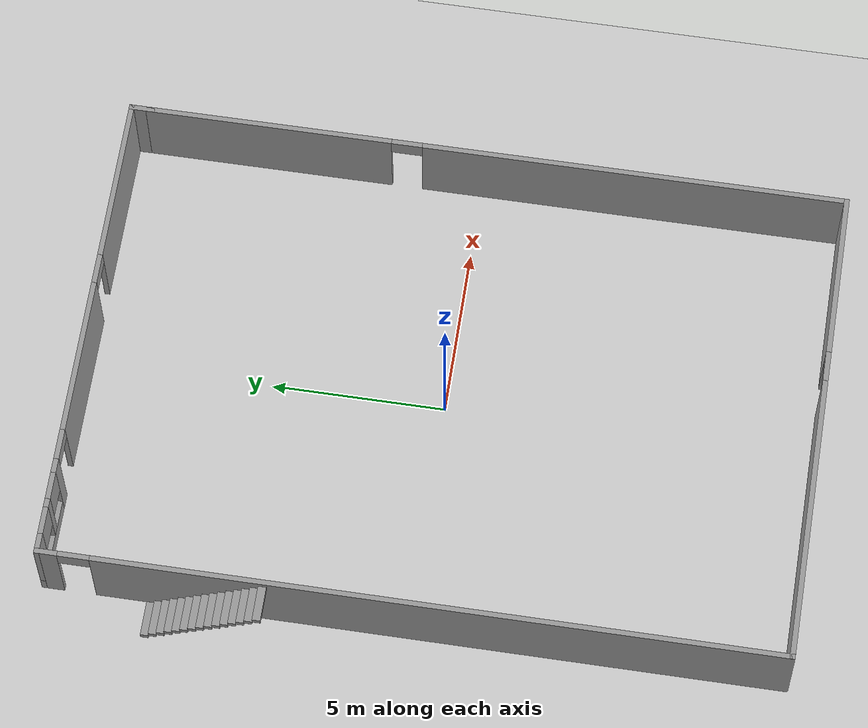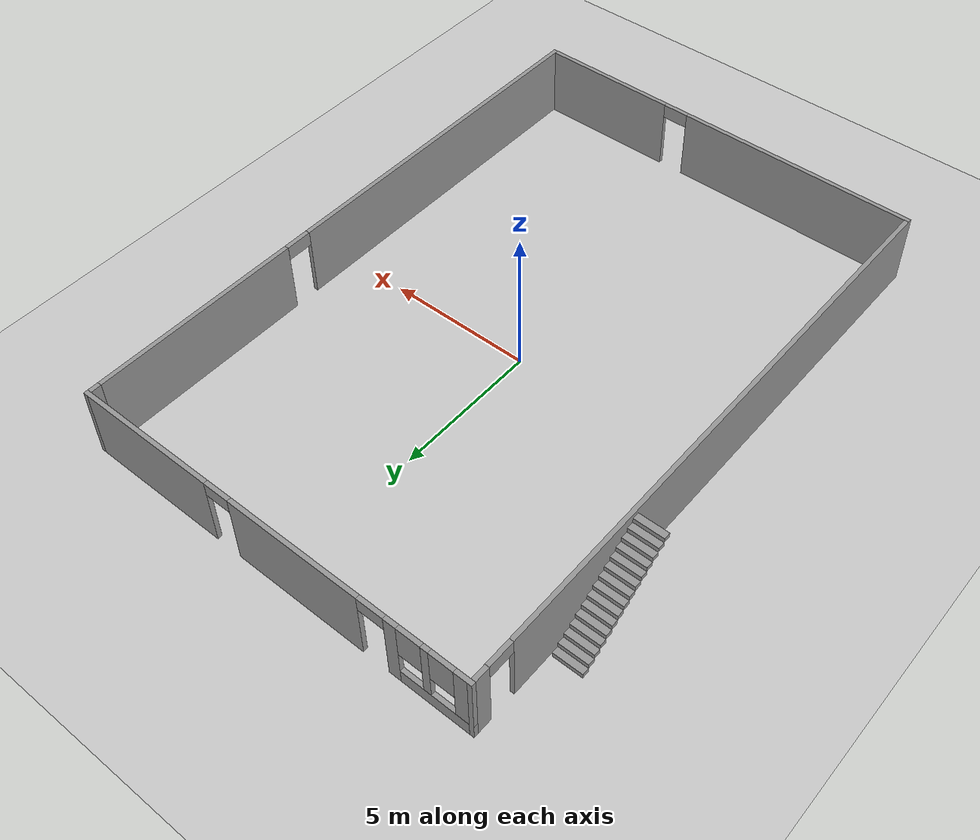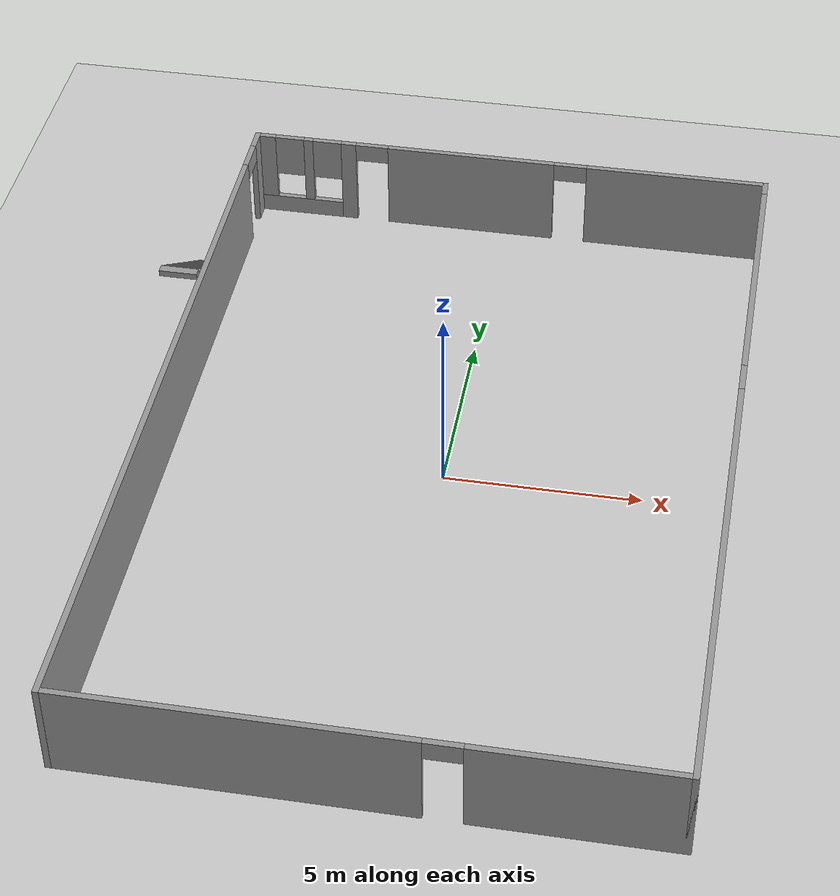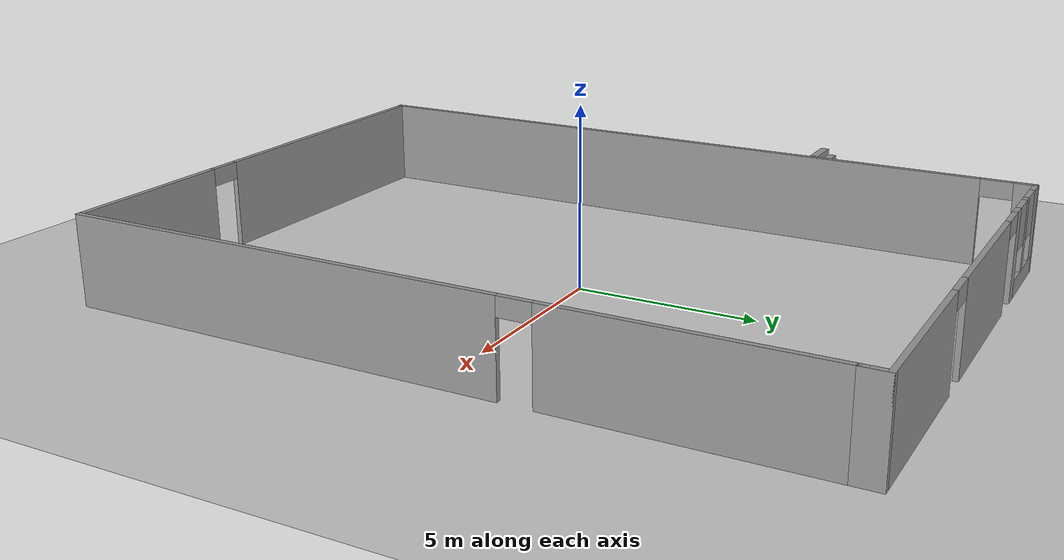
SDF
<sdf version="1.9">
 <world name="industrial-warehouse">
  <plugin filename="ignition-gazebo-contact-system" name="gz::sim::systems::Contact"/>
  <plugin filename="ignition-gazebo-imu-system" name="gz::sim::systems::Imu"/>
  <plugin filename="ignition-gazebo-physics-system" name="gz::sim::systems::Physics"/>
  <plugin filename="ignition-gazebo-scene-broadcaster-system" name="gz::sim::systems::SceneBroadcaster"/>
  <plugin filename="ignition-gazebo-sensors-system" name="gz::sim::systems::Sensors"/>
  <plugin filename="ignition-gazebo-user-commands-system" name="gz::sim::systems::UserCommands"/>
  <gravity>0 0 -9.8</gravity>
  <physics default="0" name="default_physics" type="ode">
   <max_step_size>0.01</max_step_size>
   <real_time_factor>1</real_time_factor>
   <real_time_update_rate>100</real_time_update_rate>
  </physics>
  <model name="ground_plane">
   <static>true</static>
   <link name="link">
    <collision name="collision">
     <geometry><plane><normal>0 0 1</normal><size>100 100</size></plane></geometry>
    </collision>
    <visual name="visual">
     <geometry><plane><normal>0 0 1</normal><size>100 100</size></plane></geometry>
     <material>
      <ambient>0.8 0.8 0.8 1</ambient>
      <diffuse>0.8 0.8 0.8 1</diffuse>
      <specular>0.8 0.8 0.8 1</specular>
     </material>
    </visual>
   </link>
  </model>
  <light name="Warehouse_CeilingLight_003" type="point">
   <pose>0 0 8.5 0 0 0</pose>
   <diffuse>0.5 0.5 0.5 1</diffuse>
   <specular>0.2 0.2 0.2 1</specular>
   <attenuation>
    <range>80</range>
    <constant>0.3</constant>
    <linear>0.01</linear>
    <quadratic>0.001</quadratic>
   </attenuation>
   <direction>0.1 0.1 -1</direction>
  </light>
  <model name="Untitled">
   <pose>-0.477506 -0.15 0 0 -0 0</pose>
   <link name="Stairs_0">
    <visual name="Stairs_0_Visual_0">
     <pose>-7.15305 7.387 0.083333 0 -0 0</pose>
     <geometry><box><size>1 0.233333 0.166667</size></box></geometry>
     <material>
      <script><uri>file://media/materials/scripts/gazebo.material</uri><name>Gazebo/Grey</name></script>
      <ambient>1 1 1 1</ambient>
     </material>
     <meta><layer>0</layer></meta>
    </visual>
    <collision name="Stairs_0_Collision_0">
     <geometry><box><size>1 0.233333 0.166667</size></box></geometry>
     <pose>-7.15305 7.387 0.083333 0 -0 0</pose>
    </collision>
    <visual name="Stairs_0_Visual_1">
     <pose>-7.15305 7.15366 0.25 0 -0 0</pose>
     <geometry><box><size>1 0.233333 0.166667</size></box></geometry>
     <material>
      <script><uri>file://media/materials/scripts/gazebo.material</uri><name>Gazebo/Grey</name></script>
      <ambient>1 1 1 1</ambient>
     </material>
     <meta><layer>0</layer></meta>
    </visual>
    <collision name="Stairs_0_Collision_1">
     <geometry><box><size>1 0.233333 0.166667</size></box></geometry>
     <pose>-7.15305 7.15366 0.25 0 -0 0</pose>
    </collision>
    <visual name="Stairs_0_Visual_2">
     <pose>-7.15305 6.92033 0.416667 0 -0 0</pose>
     <geometry><box><size>1 0.233333 0.166667</size></box></geometry>
     <material>
      <script><uri>file://media/materials/scripts/gazebo.material</uri><name>Gazebo/Grey</name></script>
      <ambient>1 1 1 1</ambient>
     </material>
     <meta><layer>0</layer></meta>
    </visual>
    <collision name="Stairs_0_Collision_2">
     <geometry><box><size>1 0.233333 0.166667</size></box></geometry>
     <pose>-7.15305 6.92033 0.416667 0 -0 0</pose>
    </collision>
    <visual name="Stairs_0_Visual_3">
     <pose>-7.15305 6.687 0.583333 0 -0 0</pose>
     <geometry><box><size>1 0.233333 0.166667</size></box></geometry>
     <material>
      <script><uri>file://media/materials/scripts/gazebo.material</uri><name>Gazebo/Grey</name></script>
      <ambient>1 1 1 1</ambient>
     </material>
     <meta><layer>0</layer></meta>
    </visual>
    <collision name="Stairs_0_Collision_3">
     <geometry><box><size>1 0.233333 0.166667</size></box></geometry>
     <pose>-7.15305 6.687 0.583333 0 -0 0</pose>
    </collision>
    <visual name="Stairs_0_Visual_4">
     <pose>-7.15305 6.45366 0.75 0 -0 0</pose>
     <geometry><box><size>1 0.233333 0.166667</size></box></geometry>
     <material>
      <script><uri>file://media/materials/scripts/gazebo.material</uri><name>Gazebo/Grey</name></script>
      <ambient>1 1 1 1</ambient>
     </material>
     <meta><layer>0</layer></meta>
    </visual>
    <collision name="Stairs_0_Collision_4">
     <geometry><box><size>1 0.233333 0.166667</size></box></geometry>
     <pose>-7.15305 6.45366 0.75 0 -0 0</pose>
    </collision>
    <visual name="Stairs_0_Visual_5">
     <pose>-7.15305 6.22033 0.916667 0 -0 0</pose>
     <geometry><box><size>1 0.233333 0.166667</size></box></geometry>
     <material>
      <script><uri>file://media/materials/scripts/gazebo.material</uri><name>Gazebo/Grey</name></script>
      <ambient>1 1 1 1</ambient>
     </material>
     <meta><layer>0</layer></meta>
    </visual>
    <collision name="Stairs_0_Collision_5">
     <geometry><box><size>1 0.233333 0.166667</size></box></geometry>
     <pose>-7.15305 6.22033 0.916667 0 -0 0</pose>
    </collision>
    <visual name="Stairs_0_Visual_6">
     <pose>-7.15305 5.987 1.08333 0 -0 0</pose>
     <geometry><box><size>1 0.233333 0.166667</size></box></geometry>
     <material>
      <script><uri>file://media/materials/scripts/gazebo.material</uri><name>Gazebo/Grey</name></script>
      <ambient>1 1 1 1</ambient>
     </material>
     <meta><layer>0</layer></meta>
    </visual>
    <collision name="Stairs_0_Collision_6">
     <geometry><box><size>1 0.233333 0.166667</size></box></geometry>
     <pose>-7.15305 5.987 1.08333 0 -0 0</pose>
    </collision>
    <visual name="Stairs_0_Visual_7">
     <pose>-7.15305 5.75366 1.25 0 -0 0</pose>
     <geometry><box><size>1 0.233333 0.166667</size></box></geometry>
     <material>
      <script><uri>file://media/materials/scripts/gazebo.material</uri><name>Gazebo/Grey</name></script>
      <ambient>1 1 1 1</ambient>
     </material>
     <meta><layer>0</layer></meta>
    </visual>
    <collision name="Stairs_0_Collision_7">
     <geometry><box><size>1 0.233333 0.166667</size></box></geometry>
     <pose>-7.15305 5.75366 1.25 0 -0 0</pose>
    </collision>
    <visual name="Stairs_0_Visual_8">
     <pose>-7.15305 5.52033 1.41667 0 -0 0</pose>
     <geometry><box><size>1 0.233333 0.166667</size></box></geometry>
     <material>
      <script><uri>file://media/materials/scripts/gazebo.material</uri><name>Gazebo/Grey</name></script>
      <ambient>1 1 1 1</ambient>
     </material>
     <meta><layer>0</layer></meta>
    </visual>
    <collision name="Stairs_0_Collision_8">
     <geometry><box><size>1 0.233333 0.166667</size></box></geometry>
     <pose>-7.15305 5.52033 1.41667 0 -0 0</pose>
    </collision>
    <visual name="Stairs_0_Visual_9">
     <pose>-7.15305 5.287 1.58333 0 -0 0</pose>
     <geometry><box><size>1 0.233333 0.166667</size></box></geometry>
     <material>
      <script><uri>file://media/materials/scripts/gazebo.material</uri><name>Gazebo/Grey</name></script>
      <ambient>1 1 1 1</ambient>
     </material>
     <meta><layer>0</layer></meta>
    </visual>
    <collision name="Stairs_0_Collision_9">
     <geometry><box><size>1 0.233333 0.166667</size></box></geometry>
     <pose>-7.15305 5.287 1.58333 0 -0 0</pose>
    </collision>
    <visual name="Stairs_0_Visual_10">
     <pose>-7.15305 5.05366 1.75 0 -0 0</pose>
     <geometry><box><size>1 0.233333 0.166667</size></box></geometry>
     <material>
      <script><uri>file://media/materials/scripts/gazebo.material</uri><name>Gazebo/Grey</name></script>
      <ambient>1 1 1 1</ambient>
     </material>
     <meta><layer>0</layer></meta>
    </visual>
    <collision name="Stairs_0_Collision_10">
     <geometry><box><size>1 0.233333 0.166667</size></box></geometry>
     <pose>-7.15305 5.05366 1.75 0 -0 0</pose>
    </collision>
    <visual name="Stairs_0_Visual_11">
     <pose>-7.15305 4.82033 1.91667 0 -0 0</pose>
     <geometry><box><size>1 0.233333 0.166667</size></box></geometry>
     <material>
      <script><uri>file://media/materials/scripts/gazebo.material</uri><name>Gazebo/Grey</name></script>
      <ambient>1 1 1 1</ambient>
     </material>
     <meta><layer>0</layer></meta>
    </visual>
    <collision name="Stairs_0_Collision_11">
     <geometry><box><size>1 0.233333 0.166667</size></box></geometry>
     <pose>-7.15305 4.82033 1.91667 0 -0 0</pose>
    </collision>
    <visual name="Stairs_0_Visual_12">
     <pose>-7.15305 4.587 2.08333 0 -0 0</pose>
     <geometry><box><size>1 0.233333 0.166667</size></box></geometry>
     <material>
      <script><uri>file://media/materials/scripts/gazebo.material</uri><name>Gazebo/Grey</name></script>
      <ambient>1 1 1 1</ambient>
     </material>
     <meta><layer>0</layer></meta>
    </visual>
    <collision name="Stairs_0_Collision_12">
     <geometry><box><size>1 0.233333 0.166667</size></box></geometry>
     <pose>-7.15305 4.587 2.08333 0 -0 0</pose>
    </collision>
    <visual name="Stairs_0_Visual_13">
     <pose>-7.15305 4.35366 2.25 0 -0 0</pose>
     <geometry><box><size>1 0.233333 0.166667</size></box></geometry>
     <material>
      <script><uri>file://media/materials/scripts/gazebo.material</uri><name>Gazebo/Grey</name></script>
      <ambient>1 1 1 1</ambient>
     </material>
     <meta><layer>0</layer></meta>
    </visual>
    <collision name="Stairs_0_Collision_13">
     <geometry><box><size>1 0.233333 0.166667</size></box></geometry>
     <pose>-7.15305 4.35366 2.25 0 -0 0</pose>
    </collision>
    <visual name="Stairs_0_Visual_14">
     <pose>-7.15305 4.12033 2.41667 0 -0 0</pose>
     <geometry><box><size>1 0.233333 0.166667</size></box></geometry>
     <material>
      <script><uri>file://media/materials/scripts/gazebo.material</uri><name>Gazebo/Grey</name></script>
      <ambient>1 1 1 1</ambient>
     </material>
     <meta><layer>0</layer></meta>
    </visual>
    <collision name="Stairs_0_Collision_14">
     <geometry><box><size>1 0.233333 0.166667</size></box></geometry>
     <pose>-7.15305 4.12033 2.41667 0 -0 0</pose>
    </collision>
   </link>
   <link name="Wall_22">
    <collision name="Wall_22_Collision">
     <geometry><box><size>0.75 0.15 2.5</size></box></geometry>
     <pose>0 0 1.25 0 -0 0</pose>
    </collision>
    <visual name="Wall_22_Visual">
     <pose>0 0 1.25 0 -0 0</pose>
     <geometry><box><size>0.75 0.15 2.5</size></box></geometry>
     <material>
      <script><uri>file://media/materials/scripts/gazebo.material</uri><name>Gazebo/Grey</name></script>
      <ambient>1 1 1 1</ambient>
     </material>
     <meta><layer>0</layer></meta>
    </visual>
    <pose>7.57805 10.125 0 0 -0 1.5708</pose>
   </link>
   <link name="Wall_23">
    <pose>0.528048 10.425 0 0 -0 3.14159</pose>
    <visual name="Wall_23_Visual_0">
     <pose>-4.65256 0 1.25 0 -0 0</pose>
     <geometry><box><size>4.94488 0.15 2.5</size></box></geometry>
     <material>
      <script><uri>file://media/materials/scripts/gazebo.material</uri><name>Gazebo/Grey</name></script>
      <ambient>1 1 1 1</ambient>
     </material>
     <meta><layer>0</layer></meta>
    </visual>
    <collision name="Wall_23_Collision_0">
     <geometry><box><size>4.94488 0.15 2.5</size></box></geometry>
     <pose>-4.65256 0 1.25 0 -0 0</pose>
    </collision>
    <visual name="Wall_23_Visual_1">
     <pose>1.03863 0 1.25 0 -0 0</pose>
     <geometry><box><size>4.63751 0.15 2.5</size></box></geometry>
     <material>
      <script><uri>file://media/materials/scripts/gazebo.material</uri><name>Gazebo/Grey</name></script>
      <ambient>1 1 1 1</ambient>
     </material>
     <meta><layer>0</layer></meta>
    </visual>
    <collision name="Wall_23_Collision_1">
     <geometry><box><size>4.63751 0.15 2.5</size></box></geometry>
     <pose>1.03863 0 1.25 0 -0 0</pose>
    </collision>
    <visual name="Wall_23_Visual_2">
     <pose>4.46731 0 1.25 0 -0 0</pose>
     <geometry><box><size>0.419847 0.15 2.5</size></box></geometry>
     <material>
      <script><uri>file://media/materials/scripts/gazebo.material</uri><name>Gazebo/Grey</name></script>
      <ambient>1 1 1 1</ambient>
     </material>
     <meta><layer>0</layer></meta>
    </visual>
    <collision name="Wall_23_Collision_2">
     <geometry><box><size>0.419847 0.15 2.5</size></box></geometry>
     <pose>4.46731 0 1.25 0 -0 0</pose>
    </collision>
    <visual name="Wall_23_Visual_3">
     <pose>5.90112 0 0.25 0 -0 0</pose>
     <geometry><box><size>2.44776 0.15 0.5</size></box></geometry>
     <material>
      <script><uri>file://media/materials/scripts/gazebo.material</uri><name>Gazebo/Grey</name></script>
      <ambient>1 1 1 1</ambient>
     </material>
     <meta><layer>0</layer></meta>
    </visual>
    <collision name="Wall_23_Collision_3">
     <geometry><box><size>2.44776 0.15 0.5</size></box></geometry>
     <pose>5.90112 0 0.25 0 -0 0</pose>
    </collision>
    <visual name="Wall_23_Visual_4">
     <pose>5.60615 0 1.5 0 -0 0</pose>
     <geometry><box><size>0.257818 0.15 2</size></box></geometry>
     <material>
      <script><uri>file://media/materials/scripts/gazebo.material</uri><name>Gazebo/Grey</name></script>
      <ambient>1 1 1 1</ambient>
     </material>
     <meta><layer>0</layer></meta>
    </visual>
    <collision name="Wall_23_Collision_4">
     <geometry><box><size>0.257818 0.15 2</size></box></geometry>
     <pose>5.60615 0 1.5 0 -0 0</pose>
    </collision>
    <visual name="Wall_23_Visual_5">
     <pose>6.83003 0 1.5 0 -0 0</pose>
     <geometry><box><size>0.589945 0.15 2</size></box></geometry>
     <material>
      <script><uri>file://media/materials/scripts/gazebo.material</uri><name>Gazebo/Grey</name></script>
      <ambient>1 1 1 1</ambient>
     </material>
     <meta><layer>0</layer></meta>
    </visual>
    <collision name="Wall_23_Collision_5">
     <geometry><box><size>0.589945 0.15 2</size></box></geometry>
     <pose>6.83003 0 1.5 0 -0 0</pose>
    </collision>
    <visual name="Wall_23_Visual_6">
     <pose>5.07724 0 1.9 0 -0 0</pose>
     <geometry><box><size>0.8 0.15 1.2</size></box></geometry>
     <material>
      <script><uri>file://media/materials/scripts/gazebo.material</uri><name>Gazebo/Grey</name></script>
      <ambient>1 1 1 1</ambient>
     </material>
     <meta><layer>0</layer></meta>
    </visual>
    <collision name="Wall_23_Collision_6">
     <geometry><box><size>0.8 0.15 1.2</size></box></geometry>
     <pose>5.07724 0 1.9 0 -0 0</pose>
    </collision>
    <visual name="Wall_23_Visual_7">
     <pose>6.13506 0 1.9 0 -0 0</pose>
     <geometry><box><size>0.8 0.15 1.2</size></box></geometry>
     <material>
      <script><uri>file://media/materials/scripts/gazebo.material</uri><name>Gazebo/Grey</name></script>
      <ambient>1 1 1 1</ambient>
     </material>
     <meta><layer>0</layer></meta>
    </visual>
    <collision name="Wall_23_Collision_7">
     <geometry><box><size>0.8 0.15 1.2</size></box></geometry>
     <pose>6.13506 0 1.9 0 -0 0</pose>
    </collision>
    <visual name="Wall_23_Visual_8">
     <pose>-1.73012 0 2.25 0 -0 0</pose>
     <geometry><box><size>0.9 0.15 0.5</size></box></geometry>
     <material>
      <script><uri>file://media/materials/scripts/gazebo.material</uri><name>Gazebo/Grey</name></script>
      <ambient>1 1 1 1</ambient>
     </material>
     <meta><layer>0</layer></meta>
    </visual>
    <collision name="Wall_23_Collision_8">
     <geometry><box><size>0.9 0.15 0.5</size></box></geometry>
     <pose>-1.73012 0 2.25 0 -0 0</pose>
    </collision>
    <visual name="Wall_23_Visual_9">
     <pose>3.80739 0 2.25 0 -0 0</pose>
     <geometry><box><size>0.9 0.15 0.5</size></box></geometry>
     <material>
      <script><uri>file://media/materials/scripts/gazebo.material</uri><name>Gazebo/Grey</name></script>
      <ambient>1 1 1 1</ambient>
     </material>
     <meta><layer>0</layer></meta>
    </visual>
    <collision name="Wall_23_Collision_9">
     <geometry><box><size>0.9 0.15 0.5</size></box></geometry>
     <pose>3.80739 0 2.25 0 -0 0</pose>
    </collision>
   </link>
   <link name="Wall_24">
    <pose>-6.52195 -0 0 0 -0 -1.5708</pose>
    <visual name="Wall_24_Visual_0">
     <pose>-10.1765 0 1.25 0 -0 0</pose>
     <geometry><box><size>0.647043 0.15 2.5</size></box></geometry>
     <material>
      <script><uri>file://media/materials/scripts/gazebo.material</uri><name>Gazebo/Grey</name></script>
      <ambient>1 1 1 1</ambient>
     </material>
     <meta><layer>0</layer></meta>
    </visual>
    <collision name="Wall_24_Collision_0">
     <geometry><box><size>0.647043 0.15 2.5</size></box></geometry>
     <pose>-10.1765 0 1.25 0 -0 0</pose>
    </collision>
    <visual name="Wall_24_Visual_1">
     <pose>0.773521 0 1.25 0 -0 0</pose>
     <geometry><box><size>19.453 0.15 2.5</size></box></geometry>
     <material>
      <script><uri>file://media/materials/scripts/gazebo.material</uri><name>Gazebo/Grey</name></script>
      <ambient>1 1 1 1</ambient>
     </material>
     <meta><layer>0</layer></meta>
    </visual>
    <collision name="Wall_24_Collision_1">
     <geometry><box><size>19.453 0.15 2.5</size></box></geometry>
     <pose>0.773521 0 1.25 0 -0 0</pose>
    </collision>
    <visual name="Wall_24_Visual_2">
     <pose>-9.40296 0 2.25 0 -0 0</pose>
     <geometry><box><size>0.9 0.15 0.5</size></box></geometry>
     <material>
      <script><uri>file://media/materials/scripts/gazebo.material</uri><name>Gazebo/Grey</name></script>
      <ambient>1 1 1 1</ambient>
     </material>
     <meta><layer>0</layer></meta>
    </visual>
    <collision name="Wall_24_Collision_2">
     <geometry><box><size>0.9 0.15 0.5</size></box></geometry>
     <pose>-9.40296 0 2.25 0 -0 0</pose>
    </collision>
   </link>
   <link name="Wall_25">
    <pose>0.528048 -10.425 0 0 -0 0</pose>
    <visual name="Wall_25_Visual_0">
     <pose>-2.90855 0 1.25 0 -0 0</pose>
     <geometry><box><size>8.4329 0.15 2.5</size></box></geometry>
     <material>
      <script><uri>file://media/materials/scripts/gazebo.material</uri><name>Gazebo/Grey</name></script>
      <ambient>1 1 1 1</ambient>
     </material>
     <meta><layer>0</layer></meta>
    </visual>
    <collision name="Wall_25_Collision_0">
     <geometry><box><size>8.4329 0.15 2.5</size></box></geometry>
     <pose>-2.90855 0 1.25 0 -0 0</pose>
    </collision>
    <visual name="Wall_25_Visual_1">
     <pose>4.66645 0 1.25 0 -0 0</pose>
     <geometry><box><size>4.91711 0.15 2.5</size></box></geometry>
     <material>
      <script><uri>file://media/materials/scripts/gazebo.material</uri><name>Gazebo/Grey</name></script>
      <ambient>1 1 1 1</ambient>
     </material>
     <meta><layer>0</layer></meta>
    </visual>
    <collision name="Wall_25_Collision_1">
     <geometry><box><size>4.91711 0.15 2.5</size></box></geometry>
     <pose>4.66645 0 1.25 0 -0 0</pose>
    </collision>
    <visual name="Wall_25_Visual_2">
     <pose>1.75789 0 2.25 0 -0 0</pose>
     <geometry><box><size>0.9 0.15 0.5</size></box></geometry>
     <material>
      <script><uri>file://media/materials/scripts/gazebo.material</uri><name>Gazebo/Grey</name></script>
      <ambient>1 1 1 1</ambient>
     </material>
     <meta><layer>0</layer></meta>
    </visual>
    <collision name="Wall_25_Collision_2">
     <geometry><box><size>0.9 0.15 0.5</size></box></geometry>
     <pose>1.75789 0 2.25 0 -0 0</pose>
    </collision>
   </link>
   <link name="Wall_27">
    <pose>7.57805 -0.25 0 0 -0 1.5708</pose>
    <visual name="Wall_27_Visual_0">
     <pose>-4.05695 0 1.25 0 -0 0</pose>
     <geometry><box><size>12.3861 0.15 2.5</size></box></geometry>
     <material>
      <script><uri>file://media/materials/scripts/gazebo.material</uri><name>Gazebo/Grey</name></script>
      <ambient>1 1 1 1</ambient>
     </material>
     <meta><layer>0</layer></meta>
    </visual>
    <collision name="Wall_27_Collision_0">
     <geometry><box><size>12.3861 0.15 2.5</size></box></geometry>
     <pose>-4.05695 0 1.25 0 -0 0</pose>
    </collision>
    <visual name="Wall_27_Visual_1">
     <pose>6.64305 0 1.25 0 -0 0</pose>
     <geometry><box><size>7.2139 0.15 2.5</size></box></geometry>
     <material>
      <script><uri>file://media/materials/scripts/gazebo.material</uri><name>Gazebo/Grey</name></script>
      <ambient>1 1 1 1</ambient>
     </material>
     <meta><layer>0</layer></meta>
    </visual>
    <collision name="Wall_27_Collision_1">
     <geometry><box><size>7.2139 0.15 2.5</size></box></geometry>
     <pose>6.64305 0 1.25 0 -0 0</pose>
    </collision>
    <visual name="Wall_27_Visual_2">
     <pose>2.5861 0 2.25 0 -0 0</pose>
     <geometry><box><size>0.9 0.15 0.5</size></box></geometry>
     <material>
      <script><uri>file://media/materials/scripts/gazebo.material</uri><name>Gazebo/Grey</name></script>
      <ambient>1 1 1 1</ambient>
     </material>
     <meta><layer>0</layer></meta>
    </visual>
    <collision name="Wall_27_Collision_2">
     <geometry><box><size>0.9 0.15 0.5</size></box></geometry>
     <pose>2.5861 0 2.25 0 -0 0</pose>
    </collision>
   </link>
   <static>1</static>
  </model>
 </world>
</sdf>
